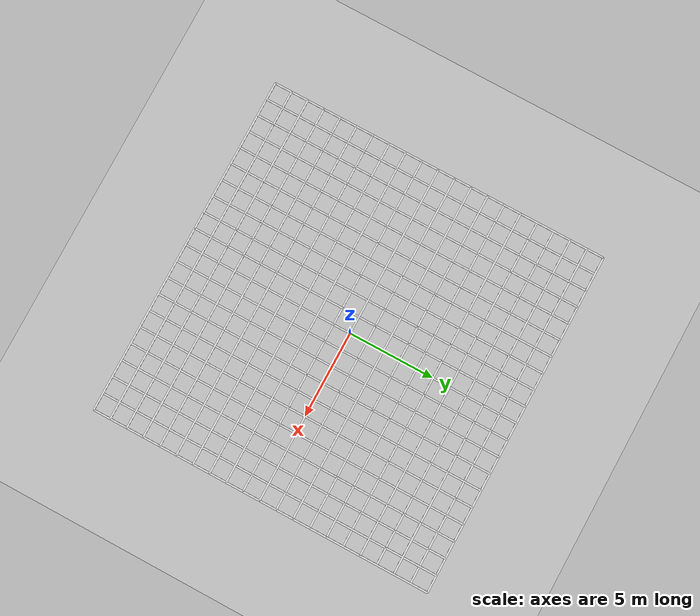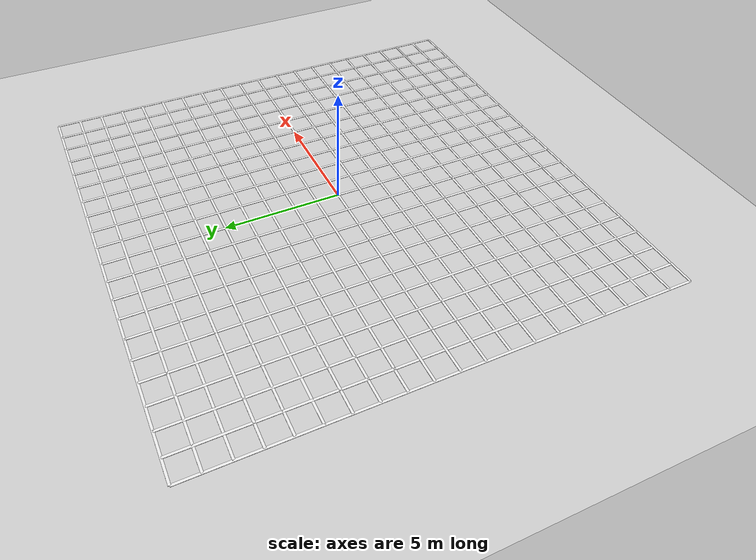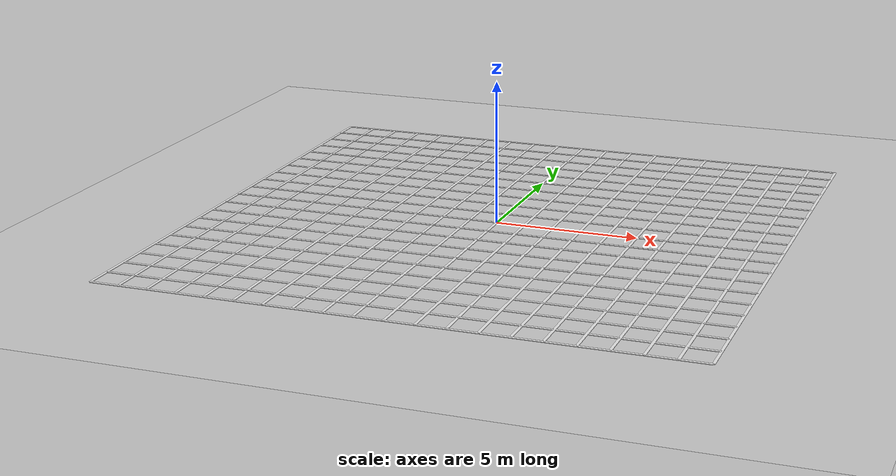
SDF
<sdf version="1.6">
 <world name="default">
  <physics type="ode">
   <ode>
    <solver><type>quick</type><iters>100</iters><sor>1.0</sor></solver>
    <constraints>
     <cfm>0.0</cfm>
     <erp>0.9</erp>
     <contact_max_correcting_vel>0.1</contact_max_correcting_vel>
     <contact_surface_layer>0.0</contact_surface_layer>
    </constraints>
   </ode>
   <real_time_update_rate>-1</real_time_update_rate>
  </physics>
  <include><uri>model://sun</uri></include>
  <model name="ground_plane">
   <static>true</static>
   <link name="link">
    <collision name="collision">
     <geometry><plane><normal>0 0 1</normal><size>50 50</size></plane></geometry>
    </collision>
    <visual name="visual">
     <geometry><plane><normal>0 0 1</normal><size>50 50</size></plane></geometry>
     <material>
      <script><uri>file://media/materials/scripts/gazebo.material</uri><name>Gazebo/Grey</name></script>
     </material>
    </visual>
   </link>
  </model>
  <model name="line0">
   <static>true</static>
   <pose>0 0 0.01 0 0 0</pose>
   <link name="link">
    <collision name="collision"><geometry><box><size>0.1 20 0.02</size></box></geometry></collision>
    <visual name="visual">
     <geometry><box><size>0.1 20 0.02</size></box></geometry>
     <material>
      <script><uri>file://media/materials/scripts/gazebo.material</uri><name>Gazebo/White</name></script>
     </material>
    </visual>
   </link>
  </model>
  <model name="line1">
   <static>true</static>
   <pose>1 0 0.01 0 0 0</pose>
   <link name="link">
    <collision name="collision"><geometry><box><size>0.1 20 0.02</size></box></geometry></collision>
    <visual name="visual">
     <geometry><box><size>0.1 20 0.02</size></box></geometry>
     <material>
      <script><uri>file://media/materials/scripts/gazebo.material</uri><name>Gazebo/White</name></script>
     </material>
    </visual>
   </link>
  </model>
  <model name="line2">
   <static>true</static>
   <pose>2 0 0.01 0 0 0</pose>
   <link name="link">
    <collision name="collision"><geometry><box><size>0.1 20 0.02</size></box></geometry></collision>
    <visual name="visual">
     <geometry><box><size>0.1 20 0.02</size></box></geometry>
     <material>
      <script><uri>file://media/materials/scripts/gazebo.material</uri><name>Gazebo/White</name></script>
     </material>
    </visual>
   </link>
  </model>
  <model name="line3">
   <static>true</static>
   <pose>3 0 0.01 0 0 0</pose>
   <link name="link">
    <collision name="collision"><geometry><box><size>0.1 20 0.02</size></box></geometry></collision>
    <visual name="visual">
     <geometry><box><size>0.1 20 0.02</size></box></geometry>
     <material>
      <script><uri>file://media/materials/scripts/gazebo.material</uri><name>Gazebo/White</name></script>
     </material>
    </visual>
   </link>
  </model>
  <model name="line4">
   <static>true</static>
   <pose>4 0 0.01 0 0 0</pose>
   <link name="link">
    <collision name="collision"><geometry><box><size>0.1 20 0.02</size></box></geometry></collision>
    <visual name="visual">
     <geometry><box><size>0.1 20 0.02</size></box></geometry>
     <material>
      <script><uri>file://media/materials/scripts/gazebo.material</uri><name>Gazebo/White</name></script>
     </material>
    </visual>
   </link>
  </model>
  <model name="line5">
   <static>true</static>
   <pose>5 0 0.01 0 0 0</pose>
   <link name="link">
    <collision name="collision"><geometry><box><size>0.1 20 0.02</size></box></geometry></collision>
    <visual name="visual">
     <geometry><box><size>0.1 20 0.02</size></box></geometry>
     <material>
      <script><uri>file://media/materials/scripts/gazebo.material</uri><name>Gazebo/White</name></script>
     </material>
    </visual>
   </link>
  </model>
  <model name="line6">
   <static>true</static>
   <pose>6 0 0.01 0 0 0</pose>
   <link name="link">
    <collision name="collision"><geometry><box><size>0.1 20 0.02</size></box></geometry></collision>
    <visual name="visual">
     <geometry><box><size>0.1 20 0.02</size></box></geometry>
     <material>
      <script><uri>file://media/materials/scripts/gazebo.material</uri><name>Gazebo/White</name></script>
     </material>
    </visual>
   </link>
  </model>
  <model name="line7">
   <static>true</static>
   <pose>7 0 0.01 0 0 0</pose>
   <link name="link">
    <collision name="collision"><geometry><box><size>0.1 20 0.02</size></box></geometry></collision>
    <visual name="visual">
     <geometry><box><size>0.1 20 0.02</size></box></geometry>
     <material>
      <script><uri>file://media/materials/scripts/gazebo.material</uri><name>Gazebo/White</name></script>
     </material>
    </visual>
   </link>
  </model>
  <model name="line8">
   <static>true</static>
   <pose>8 0 0.01 0 0 0</pose>
   <link name="link">
    <collision name="collision"><geometry><box><size>0.1 20 0.02</size></box></geometry></collision>
    <visual name="visual">
     <geometry><box><size>0.1 20 0.02</size></box></geometry>
     <material>
      <script><uri>file://media/materials/scripts/gazebo.material</uri><name>Gazebo/White</name></script>
     </material>
    </visual>
   </link>
  </model>
  <model name="line9">
   <static>true</static>
   <pose>9 0 0.01 0 0 0</pose>
   <link name="link">
    <collision name="collision"><geometry><box><size>0.1 20 0.02</size></box></geometry></collision>
    <visual name="visual">
     <geometry><box><size>0.1 20 0.02</size></box></geometry>
     <material>
      <script><uri>file://media/materials/scripts/gazebo.material</uri><name>Gazebo/White</name></script>
     </material>
    </visual>
   </link>
  </model>
  <model name="line10">
   <static>true</static>
   <pose>10 0 0.01 0 0 0</pose>
   <link name="link">
    <collision name="collision"><geometry><box><size>0.1 20 0.02</size></box></geometry></collision>
    <visual name="visual">
     <geometry><box><size>0.1 20 0.02</size></box></geometry>
     <material>
      <script><uri>file://media/materials/scripts/gazebo.material</uri><name>Gazebo/White</name></script>
     </material>
    </visual>
   </link>
  </model>
  <model name="line-1">
   <static>true</static>
   <pose>-1 0 0.01 0 0 0</pose>
   <link name="link">
    <collision name="collision"><geometry><box><size>0.1 20 0.02</size></box></geometry></collision>
    <visual name="visual">
     <geometry><box><size>0.1 20 0.02</size></box></geometry>
     <material>
      <script><uri>file://media/materials/scripts/gazebo.material</uri><name>Gazebo/White</name></script>
     </material>
    </visual>
   </link>
  </model>
  <model name="line-2">
   <static>true</static>
   <pose>-2 0 0.01 0 0 0</pose>
   <link name="link">
    <collision name="collision"><geometry><box><size>0.1 20 0.02</size></box></geometry></collision>
    <visual name="visual">
     <geometry><box><size>0.1 20 0.02</size></box></geometry>
     <material>
      <script><uri>file://media/materials/scripts/gazebo.material</uri><name>Gazebo/White</name></script>
     </material>
    </visual>
   </link>
  </model>
  <model name="line-3">
   <static>true</static>
   <pose>-3 0 0.01 0 0 0</pose>
   <link name="link">
    <collision name="collision"><geometry><box><size>0.1 20 0.02</size></box></geometry></collision>
    <visual name="visual">
     <geometry><box><size>0.1 20 0.02</size></box></geometry>
     <material>
      <script><uri>file://media/materials/scripts/gazebo.material</uri><name>Gazebo/White</name></script>
     </material>
    </visual>
   </link>
  </model>
  <model name="line-4">
   <static>true</static>
   <pose>-4 0 0.01 0 0 0</pose>
   <link name="link">
    <collision name="collision"><geometry><box><size>0.1 20 0.02</size></box></geometry></collision>
    <visual name="visual">
     <geometry><box><size>0.1 20 0.02</size></box></geometry>
     <material>
      <script><uri>file://media/materials/scripts/gazebo.material</uri><name>Gazebo/White</name></script>
     </material>
    </visual>
   </link>
  </model>
  <model name="line-5">
   <static>true</static>
   <pose>-5 0 0.01 0 0 0</pose>
   <link name="link">
    <collision name="collision"><geometry><box><size>0.1 20 0.02</size></box></geometry></collision>
    <visual name="visual">
     <geometry><box><size>0.1 20 0.02</size></box></geometry>
     <material>
      <script><uri>file://media/materials/scripts/gazebo.material</uri><name>Gazebo/White</name></script>
     </material>
    </visual>
   </link>
  </model>
  <model name="line-6">
   <static>true</static>
   <pose>-6 0 0.01 0 0 0</pose>
   <link name="link">
    <collision name="collision"><geometry><box><size>0.1 20 0.02</size></box></geometry></collision>
    <visual name="visual">
     <geometry><box><size>0.1 20 0.02</size></box></geometry>
     <material>
      <script><uri>file://media/materials/scripts/gazebo.material</uri><name>Gazebo/White</name></script>
     </material>
    </visual>
   </link>
  </model>
  <model name="line-7">
   <static>true</static>
   <pose>-7 0 0.01 0 0 0</pose>
   <link name="link">
    <collision name="collision"><geometry><box><size>0.1 20 0.02</size></box></geometry></collision>
    <visual name="visual">
     <geometry><box><size>0.1 20 0.02</size></box></geometry>
     <material>
      <script><uri>file://media/materials/scripts/gazebo.material</uri><name>Gazebo/White</name></script>
     </material>
    </visual>
   </link>
  </model>
  <model name="line-8">
   <static>true</static>
   <pose>-8 0 0.01 0 0 0</pose>
   <link name="link">
    <collision name="collision"><geometry><box><size>0.1 20 0.02</size></box></geometry></collision>
    <visual name="visual">
     <geometry><box><size>0.1 20 0.02</size></box></geometry>
     <material>
      <script><uri>file://media/materials/scripts/gazebo.material</uri><name>Gazebo/White</name></script>
     </material>
    </visual>
   </link>
  </model>
  <model name="line-9">
   <static>true</static>
   <pose>-9 0 0.01 0 0 0</pose>
   <link name="link">
    <collision name="collision"><geometry><box><size>0.1 20 0.02</size></box></geometry></collision>
    <visual name="visual">
     <geometry><box><size>0.1 20 0.02</size></box></geometry>
     <material>
      <script><uri>file://media/materials/scripts/gazebo.material</uri><name>Gazebo/White</name></script>
     </material>
    </visual>
   </link>
  </model>
  <model name="line-10">
   <static>true</static>
   <pose>-10 0 0.01 0 0 0</pose>
   <link name="link">
    <collision name="collision"><geometry><box><size>0.1 20 0.02</size></box></geometry></collision>
    <visual name="visual">
     <geometry><box><size>0.1 20 0.02</size></box></geometry>
     <material>
      <script><uri>file://media/materials/scripts/gazebo.material</uri><name>Gazebo/White</name></script>
     </material>
    </visual>
   </link>
  </model>
  <model name="linep0">
   <static>true</static>
   <pose>0 0 0.01 0 0 1.5708</pose>
   <link name="link">
    <collision name="collision"><geometry><box><size>0.1 20 0.02</size></box></geometry></collision>
    <visual name="visual">
     <geometry><box><size>0.1 20 0.02</size></box></geometry>
     <material>
      <script><uri>file://media/materials/scripts/gazebo.material</uri><name>Gazebo/White</name></script>
     </material>
    </visual>
   </link>
  </model>
  <model name="linep1">
   <static>true</static>
   <pose>0 1 0.01 0 0 1.5708</pose>
   <link name="link">
    <collision name="collision"><geometry><box><size>0.1 20 0.02</size></box></geometry></collision>
    <visual name="visual">
     <geometry><box><size>0.1 20 0.02</size></box></geometry>
     <material>
      <script><uri>file://media/materials/scripts/gazebo.material</uri><name>Gazebo/White</name></script>
     </material>
    </visual>
   </link>
  </model>
  <model name="linep2">
   <static>true</static>
   <pose>0 2 0.01 0 0 1.5708</pose>
   <link name="link">
    <collision name="collision"><geometry><box><size>0.1 20 0.02</size></box></geometry></collision>
    <visual name="visual">
     <geometry><box><size>0.1 20 0.02</size></box></geometry>
     <material>
      <script><uri>file://media/materials/scripts/gazebo.material</uri><name>Gazebo/White</name></script>
     </material>
    </visual>
   </link>
  </model>
  <model name="linep3">
   <static>true</static>
   <pose>0 3 0.01 0 0 1.5708</pose>
   <link name="link">
    <collision name="collision"><geometry><box><size>0.1 20 0.02</size></box></geometry></collision>
    <visual name="visual">
     <geometry><box><size>0.1 20 0.02</size></box></geometry>
     <material>
      <script><uri>file://media/materials/scripts/gazebo.material</uri><name>Gazebo/White</name></script>
     </material>
    </visual>
   </link>
  </model>
  <model name="linep4">
   <static>true</static>
   <pose>0 4 0.01 0 0 1.5708</pose>
   <link name="link">
    <collision name="collision"><geometry><box><size>0.1 20 0.02</size></box></geometry></collision>
    <visual name="visual">
     <geometry><box><size>0.1 20 0.02</size></box></geometry>
     <material>
      <script><uri>file://media/materials/scripts/gazebo.material</uri><name>Gazebo/White</name></script>
     </material>
    </visual>
   </link>
  </model>
  <model name="linep5">
   <static>true</static>
   <pose>0 5 0.01 0 0 1.5708</pose>
   <link name="link">
    <collision name="collision"><geometry><box><size>0.1 20 0.02</size></box></geometry></collision>
    <visual name="visual">
     <geometry><box><size>0.1 20 0.02</size></box></geometry>
     <material>
      <script><uri>file://media/materials/scripts/gazebo.material</uri><name>Gazebo/White</name></script>
     </material>
    </visual>
   </link>
  </model>
  <model name="linep6">
   <static>true</static>
   <pose>0 6 0.01 0 0 1.5708</pose>
   <link name="link">
    <collision name="collision"><geometry><box><size>0.1 20 0.02</size></box></geometry></collision>
    <visual name="visual">
     <geometry><box><size>0.1 20 0.02</size></box></geometry>
     <material>
      <script><uri>file://media/materials/scripts/gazebo.material</uri><name>Gazebo/White</name></script>
     </material>
    </visual>
   </link>
  </model>
  <model name="linep7">
   <static>true</static>
   <pose>0 7 0.01 0 0 1.5708</pose>
   <link name="link">
    <collision name="collision"><geometry><box><size>0.1 20 0.02</size></box></geometry></collision>
    <visual name="visual">
     <geometry><box><size>0.1 20 0.02</size></box></geometry>
     <material>
      <script><uri>file://media/materials/scripts/gazebo.material</uri><name>Gazebo/White</name></script>
     </material>
    </visual>
   </link>
  </model>
  <model name="linep8">
   <static>true</static>
   <pose>0 8 0.01 0 0 1.5708</pose>
   <link name="link">
    <collision name="collision"><geometry><box><size>0.1 20 0.02</size></box></geometry></collision>
    <visual name="visual">
     <geometry><box><size>0.1 20 0.02</size></box></geometry>
     <material>
      <script><uri>file://media/materials/scripts/gazebo.material</uri><name>Gazebo/White</name></script>
     </material>
    </visual>
   </link>
  </model>
  <model name="linep9">
   <static>true</static>
   <pose>0 9 0.01 0 0 1.5708</pose>
   <link name="link">
    <collision name="collision"><geometry><box><size>0.1 20 0.02</size></box></geometry></collision>
    <visual name="visual">
     <geometry><box><size>0.1 20 0.02</size></box></geometry>
     <material>
      <script><uri>file://media/materials/scripts/gazebo.material</uri><name>Gazebo/White</name></script>
     </material>
    </visual>
   </link>
  </model>
  <model name="linep10">
   <static>true</static>
   <pose>0 10 0.01 0 0 1.5708</pose>
   <link name="link">
    <collision name="collision"><geometry><box><size>0.1 20 0.02</size></box></geometry></collision>
    <visual name="visual">
     <geometry><box><size>0.1 20 0.02</size></box></geometry>
     <material>
      <script><uri>file://media/materials/scripts/gazebo.material</uri><name>Gazebo/White</name></script>
     </material>
    </visual>
   </link>
  </model>
  <model name="linep-10">
   <static>true</static>
   <pose>0 -10 0.01 0 0 1.5708</pose>
   <link name="link">
    <collision name="collision"><geometry><box><size>0.1 20 0.02</size></box></geometry></collision>
    <visual name="visual">
     <geometry><box><size>0.1 20 0.02</size></box></geometry>
     <material>
      <script><uri>file://media/materials/scripts/gazebo.material</uri><name>Gazebo/White</name></script>
     </material>
    </visual>
   </link>
  </model>
  <model name="linep-9">
   <static>true</static>
   <pose>0 -9 0.01 0 0 1.5708</pose>
   <link name="link">
    <collision name="collision"><geometry><box><size>0.1 20 0.02</size></box></geometry></collision>
    <visual name="visual">
     <geometry><box><size>0.1 20 0.02</size></box></geometry>
     <material>
      <script><uri>file://media/materials/scripts/gazebo.material</uri><name>Gazebo/White</name></script>
     </material>
    </visual>
   </link>
  </model>
  <model name="linep-8">
   <static>true</static>
   <pose>0 -8 0.01 0 0 1.5708</pose>
   <link name="link">
    <collision name="collision"><geometry><box><size>0.1 20 0.02</size></box></geometry></collision>
    <visual name="visual">
     <geometry><box><size>0.1 20 0.02</size></box></geometry>
     <material>
      <script><uri>file://media/materials/scripts/gazebo.material</uri><name>Gazebo/White</name></script>
     </material>
    </visual>
   </link>
  </model>
  <model name="linep-7">
   <static>true</static>
   <pose>0 -7 0.01 0 0 1.5708</pose>
   <link name="link">
    <collision name="collision"><geometry><box><size>0.1 20 0.02</size></box></geometry></collision>
    <visual name="visual">
     <geometry><box><size>0.1 20 0.02</size></box></geometry>
     <material>
      <script><uri>file://media/materials/scripts/gazebo.material</uri><name>Gazebo/White</name></script>
     </material>
    </visual>
   </link>
  </model>
  <model name="linep-6">
   <static>true</static>
   <pose>0 -6 0.01 0 0 1.5708</pose>
   <link name="link">
    <collision name="collision"><geometry><box><size>0.1 20 0.02</size></box></geometry></collision>
    <visual name="visual">
     <geometry><box><size>0.1 20 0.02</size></box></geometry>
     <material>
      <script><uri>file://media/materials/scripts/gazebo.material</uri><name>Gazebo/White</name></script>
     </material>
    </visual>
   </link>
  </model>
  <model name="linep-5">
   <static>true</static>
   <pose>0 -5 0.01 0 0 1.5708</pose>
   <link name="link">
    <collision name="collision"><geometry><box><size>0.1 20 0.02</size></box></geometry></collision>
    <visual name="visual">
     <geometry><box><size>0.1 20 0.02</size></box></geometry>
     <material>
      <script><uri>file://media/materials/scripts/gazebo.material</uri><name>Gazebo/White</name></script>
     </material>
    </visual>
   </link>
  </model>
  <model name="linep-4">
   <static>true</static>
   <pose>0 -4 0.01 0 0 1.5708</pose>
   <link name="link">
    <collision name="collision"><geometry><box><size>0.1 20 0.02</size></box></geometry></collision>
    <visual name="visual">
     <geometry><box><size>0.1 20 0.02</size></box></geometry>
     <material>
      <script><uri>file://media/materials/scripts/gazebo.material</uri><name>Gazebo/White</name></script>
     </material>
    </visual>
   </link>
  </model>
  <model name="linep-3">
   <static>true</static>
   <pose>0 -3 0.01 0 0 1.5708</pose>
   <link name="link">
    <collision name="collision"><geometry><box><size>0.1 20 0.02</size></box></geometry></collision>
    <visual name="visual">
     <geometry><box><size>0.1 20 0.02</size></box></geometry>
     <material>
      <script><uri>file://media/materials/scripts/gazebo.material</uri><name>Gazebo/White</name></script>
     </material>
    </visual>
   </link>
  </model>
  <model name="linep-2">
   <static>true</static>
   <pose>0 -2 0.01 0 0 1.5708</pose>
   <link name="link">
    <collision name="collision"><geometry><box><size>0.1 20 0.02</size></box></geometry></collision>
    <visual name="visual">
     <geometry><box><size>0.1 20 0.02</size></box></geometry>
     <material>
      <script><uri>file://media/materials/scripts/gazebo.material</uri><name>Gazebo/White</name></script>
     </material>
    </visual>
   </link>
  </model>
  <model name="linep-1">
   <static>true</static>
   <pose>0 -1 0.01 0 0 1.5708</pose>
   <link name="link">
    <collision name="collision"><geometry><box><size>0.1 20 0.02</size></box></geometry></collision>
    <visual name="visual">
     <geometry><box><size>0.1 20 0.02</size></box></geometry>
     <material>
      <script><uri>file://media/materials/scripts/gazebo.material</uri><name>Gazebo/White</name></script>
     </material>
    </visual>
   </link>
  </model>
 </world>
</sdf>
